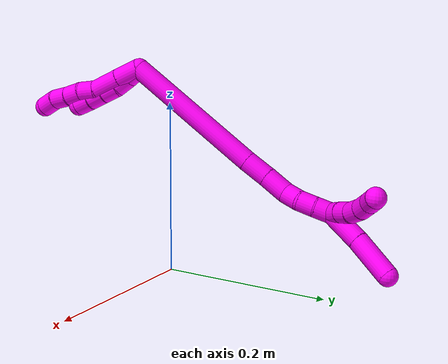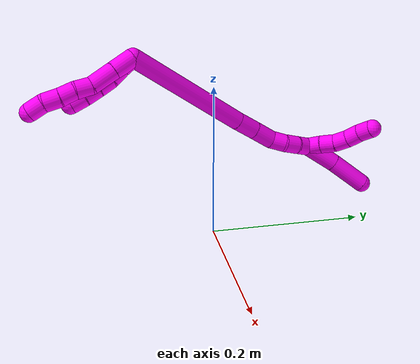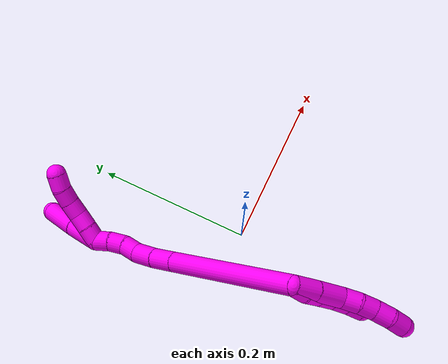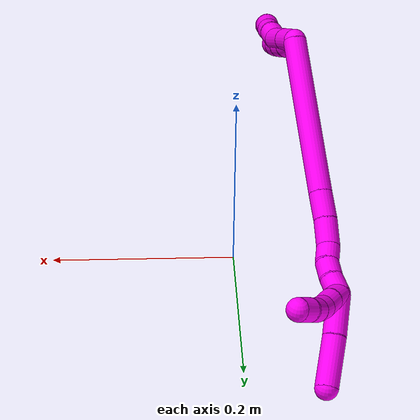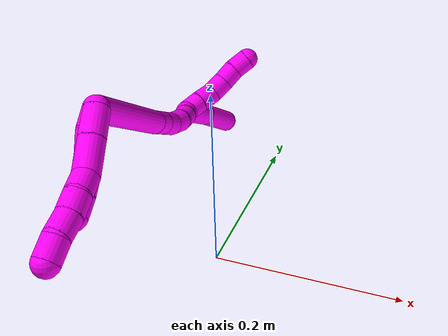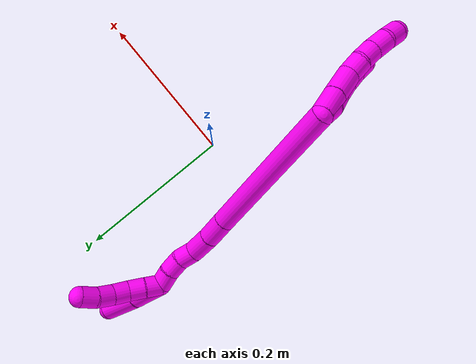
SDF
<sdf version="1.7">
 <world name="default">
  <model name="10">
   <static>0</static>
   <link name="10">
    <collision name="collision-cylinder-e_1_2_8">
     <pose>0.003015 -0.012654 -0.007743 2.11989 0.200472 0.355104</pose>
     <geometry><cylinder><radius>0.0125</radius><length>0.030277</length></cylinder></geometry>
     <surface>
      <friction><ode><mu>1.16</mu><mu2>1.16</mu2><slip1>0</slip1><slip2>0</slip2></ode></friction>
      <contact><ode><kp>1e+06</kp><kd>1</kd><max_vel>0</max_vel><min_depth>0.001</min_depth></ode></contact>
     </surface>
    </collision>
    <visual name="visual-cylinder-e_1_2_8">
     <pose>0.003015 -0.012654 -0.007743 2.11989 0.200472 0.355104</pose>
     <geometry><cylinder><radius>0.0125</radius><length>0.030277</length></cylinder></geometry>
     <material><ambient>1 0 0.964706 1</ambient></material>
    </visual>
    <collision name="collision-cylinder-e_2_8_9">
     <pose>0.009192 -0.039736 -0.024508 2.12965 0.183787 0.329615</pose>
     <geometry><cylinder><radius>0.0125</radius><length>0.034615</length></cylinder></geometry>
     <surface>
      <friction><ode><mu>1.16</mu><mu2>1.16</mu2><slip1>0</slip1><slip2>0</slip2></ode></friction>
      <contact><ode><kp>1e+06</kp><kd>1</kd><max_vel>0</max_vel><min_depth>0.001</min_depth></ode></contact>
     </surface>
    </collision>
    <visual name="visual-cylinder-e_2_8_9">
     <pose>0.009192 -0.039736 -0.024508 2.12965 0.183787 0.329615</pose>
     <geometry><cylinder><radius>0.0125</radius><length>0.034615</length></cylinder></geometry>
     <material><ambient>1 0 0.964706 1</ambient></material>
    </visual>
    <collision name="collision-cylinder-e_3_9_10">
     <pose>0.013704 -0.064436 -0.035727 1.78151 0.127658 0.157738</pose>
     <geometry><cylinder><radius>0.0125</radius><length>0.021183</length></cylinder></geometry>
     <surface>
      <friction><ode><mu>1.16</mu><mu2>1.16</mu2><slip1>0</slip1><slip2>0</slip2></ode></friction>
      <contact><ode><kp>1e+06</kp><kd>1</kd><max_vel>0</max_vel><min_depth>0.001</min_depth></ode></contact>
     </surface>
    </collision>
    <visual name="visual-cylinder-e_3_9_10">
     <pose>0.013704 -0.064436 -0.035727 1.78151 0.127658 0.157738</pose>
     <geometry><cylinder><radius>0.0125</radius><length>0.021183</length></cylinder></geometry>
     <material><ambient>1 0 0.964706 1</ambient></material>
    </visual>
    <collision name="collision-cylinder-e_4_10_11">
     <pose>0.015487 -0.084032 -0.041913 1.97509 0.042861 0.064945</pose>
     <geometry><cylinder><radius>0.0125</radius><length>0.020299</length></cylinder></geometry>
     <surface>
      <friction><ode><mu>1.16</mu><mu2>1.16</mu2><slip1>0</slip1><slip2>0</slip2></ode></friction>
      <contact><ode><kp>1e+06</kp><kd>1</kd><max_vel>0</max_vel><min_depth>0.001</min_depth></ode></contact>
     </surface>
    </collision>
    <visual name="visual-cylinder-e_4_10_11">
     <pose>0.015487 -0.084032 -0.041913 1.97509 0.042861 0.064945</pose>
     <geometry><cylinder><radius>0.0125</radius><length>0.020299</length></cylinder></geometry>
     <material><ambient>1 0 0.964706 1</ambient></material>
    </visual>
    <collision name="collision-cylinder-e_5_11_12">
     <pose>0.015533 -0.103765 -0.049341 1.88983 -0.03547 -0.049066</pose>
     <geometry><cylinder><radius>0.0125</radius><length>0.021942</length></cylinder></geometry>
     <surface>
      <friction><ode><mu>1.16</mu><mu2>1.16</mu2><slip1>0</slip1><slip2>0</slip2></ode></friction>
      <contact><ode><kp>1e+06</kp><kd>1</kd><max_vel>0</max_vel><min_depth>0.001</min_depth></ode></contact>
     </surface>
    </collision>
    <visual name="visual-cylinder-e_5_11_12">
     <pose>0.015533 -0.103765 -0.049341 1.88983 -0.03547 -0.049066</pose>
     <geometry><cylinder><radius>0.0125</radius><length>0.021942</length></cylinder></geometry>
     <material><ambient>1 0 0.964706 1</ambient></material>
    </visual>
    <collision name="collision-cylinder-e_6_12_6">
     <pose>0.014297 -0.123172 -0.058773 2.15852 -0.07815 -0.145791</pose>
     <geometry><cylinder><radius>0.0125</radius><length>0.021684</length></cylinder></geometry>
     <surface>
      <friction><ode><mu>1.16</mu><mu2>1.16</mu2><slip1>0</slip1><slip2>0</slip2></ode></friction>
      <contact><ode><kp>1e+06</kp><kd>1</kd><max_vel>0</max_vel><min_depth>0.001</min_depth></ode></contact>
     </surface>
    </collision>
    <visual name="visual-cylinder-e_6_12_6">
     <pose>0.014297 -0.123172 -0.058773 2.15852 -0.07815 -0.145791</pose>
     <geometry><cylinder><radius>0.0125</radius><length>0.021684</length></cylinder></geometry>
     <material><ambient>1 0 0.964706 1</ambient></material>
    </visual>
    <collision name="collision-cylinder-e_1_2_13">
     <pose>-0.000346 -0.007486 -0.006622 2.29503 -0.034655 -0.076893</pose>
     <geometry><cylinder><radius>0.0125</radius><length>0.02</length></cylinder></geometry>
     <surface>
      <friction><ode><mu>1.16</mu><mu2>1.16</mu2><slip1>0</slip1><slip2>0</slip2></ode></friction>
      <contact><ode><kp>1e+06</kp><kd>1</kd><max_vel>0</max_vel><min_depth>0.001</min_depth></ode></contact>
     </surface>
    </collision>
    <visual name="visual-cylinder-e_1_2_13">
     <pose>-0.000346 -0.007486 -0.006622 2.29503 -0.034655 -0.076893</pose>
     <geometry><cylinder><radius>0.0125</radius><length>0.02</length></cylinder></geometry>
     <material><ambient>1 0 0.964706 1</ambient></material>
    </visual>
    <collision name="collision-cylinder-e_2_13_14">
     <pose>0.001392 -0.022111 -0.019928 2.32327 0.210071 0.476977</pose>
     <geometry><cylinder><radius>0.0125</radius><length>0.02</length></cylinder></geometry>
     <surface>
      <friction><ode><mu>1.16</mu><mu2>1.16</mu2><slip1>0</slip1><slip2>0</slip2></ode></friction>
      <contact><ode><kp>1e+06</kp><kd>1</kd><max_vel>0</max_vel><min_depth>0.001</min_depth></ode></contact>
     </surface>
    </collision>
    <visual name="visual-cylinder-e_2_13_14">
     <pose>0.001392 -0.022111 -0.019928 2.32327 0.210071 0.476977</pose>
     <geometry><cylinder><radius>0.0125</radius><length>0.02</length></cylinder></geometry>
     <material><ambient>1 0 0.964706 1</ambient></material>
    </visual>
    <collision name="collision-cylinder-e_3_14_15">
     <pose>0.005463 -0.03757 -0.031792 2.1277 0.199833 0.357182</pose>
     <geometry><cylinder><radius>0.0125</radius><length>0.02</length></cylinder></geometry>
     <surface>
      <friction><ode><mu>1.16</mu><mu2>1.16</mu2><slip1>0</slip1><slip2>0</slip2></ode></friction>
      <contact><ode><kp>1e+06</kp><kd>1</kd><max_vel>0</max_vel><min_depth>0.001</min_depth></ode></contact>
     </surface>
    </collision>
    <visual name="visual-cylinder-e_3_14_15">
     <pose>0.005463 -0.03757 -0.031792 2.1277 0.199833 0.357182</pose>
     <geometry><cylinder><radius>0.0125</radius><length>0.02</length></cylinder></geometry>
     <material><ambient>1 0 0.964706 1</ambient></material>
    </visual>
    <collision name="collision-cylinder-e_4_15_16">
     <pose>0.008643 -0.054406 -0.042077 2.11076 0.119779 0.210908</pose>
     <geometry><cylinder><radius>0.0125</radius><length>0.02</length></cylinder></geometry>
     <surface>
      <friction><ode><mu>1.16</mu><mu2>1.16</mu2><slip1>0</slip1><slip2>0</slip2></ode></friction>
      <contact><ode><kp>1e+06</kp><kd>1</kd><max_vel>0</max_vel><min_depth>0.001</min_depth></ode></contact>
     </surface>
    </collision>
    <visual name="visual-cylinder-e_4_15_16">
     <pose>0.008643 -0.054406 -0.042077 2.11076 0.119779 0.210908</pose>
     <geometry><cylinder><radius>0.0125</radius><length>0.02</length></cylinder></geometry>
     <material><ambient>1 0 0.964706 1</ambient></material>
    </visual>
    <collision name="collision-cylinder-e_5_16_5">
     <pose>0.010249 -0.071738 -0.051884 2.06084 0.041159 0.068587</pose>
     <geometry><cylinder><radius>0.0125</radius><length>0.02</length></cylinder></geometry>
     <surface>
      <friction><ode><mu>1.16</mu><mu2>1.16</mu2><slip1>0</slip1><slip2>0</slip2></ode></friction>
      <contact><ode><kp>1e+06</kp><kd>1</kd><max_vel>0</max_vel><min_depth>0.001</min_depth></ode></contact>
     </surface>
    </collision>
    <visual name="visual-cylinder-e_5_16_5">
     <pose>0.010249 -0.071738 -0.051884 2.06084 0.041159 0.068587</pose>
     <geometry><cylinder><radius>0.0125</radius><length>0.02</length></cylinder></geometry>
     <material><ambient>1 0 0.964706 1</ambient></material>
    </visual>
    <collision name="collision-cylinder-e_1_2_17">
     <pose>-0.013038 0.073882 -0.047391 -2.14113 -0.147458 0.268636</pose>
     <geometry><cylinder><radius>0.0125</radius><length>0.177476</length></cylinder></geometry>
     <surface>
      <friction><ode><mu>1.16</mu><mu2>1.16</mu2><slip1>0</slip1><slip2>0</slip2></ode></friction>
      <contact><ode><kp>1e+06</kp><kd>1</kd><max_vel>0</max_vel><min_depth>0.001</min_depth></ode></contact>
     </surface>
    </collision>
    <visual name="visual-cylinder-e_1_2_17">
     <pose>-0.013038 0.073882 -0.047391 -2.14113 -0.147458 0.268636</pose>
     <geometry><cylinder><radius>0.0125</radius><length>0.177476</length></cylinder></geometry>
     <material><ambient>1 0 0.964706 1</ambient></material>
    </visual>
    <collision name="collision-cylinder-e_2_17_18">
     <pose>-0.028437 0.160861 -0.102448 -2.10034 -0.154368 0.268136</pose>
     <geometry><cylinder><radius>0.0125</radius><length>0.030718</length></cylinder></geometry>
     <surface>
      <friction><ode><mu>1.16</mu><mu2>1.16</mu2><slip1>0</slip1><slip2>0</slip2></ode></friction>
      <contact><ode><kp>1e+06</kp><kd>1</kd><max_vel>0</max_vel><min_depth>0.001</min_depth></ode></contact>
     </surface>
    </collision>
    <visual name="visual-cylinder-e_2_17_18">
     <pose>-0.028437 0.160861 -0.102448 -2.10034 -0.154368 0.268136</pose>
     <geometry><cylinder><radius>0.0125</radius><length>0.030718</length></cylinder></geometry>
     <material><ambient>1 0 0.964706 1</ambient></material>
    </visual>
    <collision name="collision-cylinder-e_3_18_19">
     <pose>-0.032011 0.186905 -0.117772 -2.10493 -0.080409 0.140826</pose>
     <geometry><cylinder><radius>0.0125</radius><length>0.030179</length></cylinder></geometry>
     <surface>
      <friction><ode><mu>1.16</mu><mu2>1.16</mu2><slip1>0</slip1><slip2>0</slip2></ode></friction>
      <contact><ode><kp>1e+06</kp><kd>1</kd><max_vel>0</max_vel><min_depth>0.001</min_depth></ode></contact>
     </surface>
    </collision>
    <visual name="visual-cylinder-e_3_18_19">
     <pose>-0.032011 0.186905 -0.117772 -2.10493 -0.080409 0.140826</pose>
     <geometry><cylinder><radius>0.0125</radius><length>0.030179</length></cylinder></geometry>
     <material><ambient>1 0 0.964706 1</ambient></material>
    </visual>
    <collision name="collision-cylinder-e_4_19_20">
     <pose>-0.031845 0.209614 -0.128108 -1.8386 0.135297 -0.177229</pose>
     <geometry><cylinder><radius>0.0125</radius><length>0.020434</length></cylinder></geometry>
     <surface>
      <friction><ode><mu>1.16</mu><mu2>1.16</mu2><slip1>0</slip1><slip2>0</slip2></ode></friction>
      <contact><ode><kp>1e+06</kp><kd>1</kd><max_vel>0</max_vel><min_depth>0.001</min_depth></ode></contact>
     </surface>
    </collision>
    <visual name="visual-cylinder-e_4_19_20">
     <pose>-0.031845 0.209614 -0.128108 -1.8386 0.135297 -0.177229</pose>
     <geometry><cylinder><radius>0.0125</radius><length>0.020434</length></cylinder></geometry>
     <material><ambient>1 0 0.964706 1</ambient></material>
    </visual>
    <collision name="collision-cylinder-e_5_20_21">
     <pose>-0.032006 0.22916 -0.133004 -1.79361 -0.152314 0.190477</pose>
     <geometry><cylinder><radius>0.0125</radius><length>0.020298</length></cylinder></geometry>
     <surface>
      <friction><ode><mu>1.16</mu><mu2>1.16</mu2><slip1>0</slip1><slip2>0</slip2></ode></friction>
      <contact><ode><kp>1e+06</kp><kd>1</kd><max_vel>0</max_vel><min_depth>0.001</min_depth></ode></contact>
     </surface>
    </collision>
    <visual name="visual-cylinder-e_5_20_21">
     <pose>-0.032006 0.22916 -0.133004 -1.79361 -0.152314 0.190477</pose>
     <geometry><cylinder><radius>0.0125</radius><length>0.020298</length></cylinder></geometry>
     <material><ambient>1 0 0.964706 1</ambient></material>
    </visual>
    <collision name="collision-cylinder-e_6_21_1">
     <pose>-0.036751 0.248544 -0.137811 -1.83435 -0.311774 0.404763</pose>
     <geometry><cylinder><radius>0.0125</radius><length>0.020895</length></cylinder></geometry>
     <surface>
      <friction><ode><mu>1.16</mu><mu2>1.16</mu2><slip1>0</slip1><slip2>0</slip2></ode></friction>
      <contact><ode><kp>1e+06</kp><kd>1</kd><max_vel>0</max_vel><min_depth>0.001</min_depth></ode></contact>
     </surface>
    </collision>
    <visual name="visual-cylinder-e_6_21_1">
     <pose>-0.036751 0.248544 -0.137811 -1.83435 -0.311774 0.404763</pose>
     <geometry><cylinder><radius>0.0125</radius><length>0.020895</length></cylinder></geometry>
     <material><ambient>1 0 0.964706 1</ambient></material>
    </visual>
    <collision name="collision-cylinder-e_1_1_22">
     <pose>-0.034739 0.266157 -0.137471 -1.22014 0.548791 -0.388582</pose>
     <geometry><cylinder><radius>0.0125</radius><length>0.02</length></cylinder></geometry>
     <surface>
      <friction><ode><mu>1.16</mu><mu2>1.16</mu2><slip1>0</slip1><slip2>0</slip2></ode></friction>
      <contact><ode><kp>1e+06</kp><kd>1</kd><max_vel>0</max_vel><min_depth>0.001</min_depth></ode></contact>
     </surface>
    </collision>
    <visual name="visual-cylinder-e_1_1_22">
     <pose>-0.034739 0.266157 -0.137471 -1.22014 0.548791 -0.388582</pose>
     <geometry><cylinder><radius>0.0125</radius><length>0.02</length></cylinder></geometry>
     <material><ambient>1 0 0.964706 1</ambient></material>
    </visual>
    <collision name="collision-cylinder-e_2_22_23">
     <pose>-0.024479 0.282532 -0.132389 -1.31909 0.528684 -0.413748</pose>
     <geometry><cylinder><radius>0.0125</radius><length>0.02</length></cylinder></geometry>
     <surface>
      <friction><ode><mu>1.16</mu><mu2>1.16</mu2><slip1>0</slip1><slip2>0</slip2></ode></friction>
      <contact><ode><kp>1e+06</kp><kd>1</kd><max_vel>0</max_vel><min_depth>0.001</min_depth></ode></contact>
     </surface>
    </collision>
    <visual name="visual-cylinder-e_2_22_23">
     <pose>-0.024479 0.282532 -0.132389 -1.31909 0.528684 -0.413748</pose>
     <geometry><cylinder><radius>0.0125</radius><length>0.02</length></cylinder></geometry>
     <material><ambient>1 0 0.964706 1</ambient></material>
    </visual>
    <collision name="collision-cylinder-e_3_23_24">
     <pose>-0.014734 0.298618 -0.125967 -1.06553 0.489404 -0.292372</pose>
     <geometry><cylinder><radius>0.0125</radius><length>0.02</length></cylinder></geometry>
     <surface>
      <friction><ode><mu>1.16</mu><mu2>1.16</mu2><slip1>0</slip1><slip2>0</slip2></ode></friction>
      <contact><ode><kp>1e+06</kp><kd>1</kd><max_vel>0</max_vel><min_depth>0.001</min_depth></ode></contact>
     </surface>
    </collision>
    <visual name="visual-cylinder-e_3_23_24">
     <pose>-0.014734 0.298618 -0.125967 -1.06553 0.489404 -0.292372</pose>
     <geometry><cylinder><radius>0.0125</radius><length>0.02</length></cylinder></geometry>
     <material><ambient>1 0 0.964706 1</ambient></material>
    </visual>
    <collision name="collision-cylinder-e_4_24_25">
     <pose>-0.005001 0.312981 -0.116164 -0.876257 0.527305 -0.251593</pose>
     <geometry><cylinder><radius>0.0125</radius><length>0.02</length></cylinder></geometry>
     <surface>
      <friction><ode><mu>1.16</mu><mu2>1.16</mu2><slip1>0</slip1><slip2>0</slip2></ode></friction>
      <contact><ode><kp>1e+06</kp><kd>1</kd><max_vel>0</max_vel><min_depth>0.001</min_depth></ode></contact>
     </surface>
    </collision>
    <visual name="visual-cylinder-e_4_24_25">
     <pose>-0.005001 0.312981 -0.116164 -0.876257 0.527305 -0.251593</pose>
     <geometry><cylinder><radius>0.0125</radius><length>0.02</length></cylinder></geometry>
     <material><ambient>1 0 0.964706 1</ambient></material>
    </visual>
    <collision name="collision-cylinder-e_5_25_4">
     <pose>0.006792 0.325321 -0.105963 -0.884509 0.742347 -0.364524</pose>
     <geometry><cylinder><radius>0.0125</radius><length>0.02</length></cylinder></geometry>
     <surface>
      <friction><ode><mu>1.16</mu><mu2>1.16</mu2><slip1>0</slip1><slip2>0</slip2></ode></friction>
      <contact><ode><kp>1e+06</kp><kd>1</kd><max_vel>0</max_vel><min_depth>0.001</min_depth></ode></contact>
     </surface>
    </collision>
    <visual name="visual-cylinder-e_5_25_4">
     <pose>0.006792 0.325321 -0.105963 -0.884509 0.742347 -0.364524</pose>
     <geometry><cylinder><radius>0.0125</radius><length>0.02</length></cylinder></geometry>
     <material><ambient>1 0 0.964706 1</ambient></material>
    </visual>
    <collision name="collision-cylinder-e_1_1_26">
     <pose>-0.037321 0.277456 -0.152394 -2.12651 0.115395 -0.206984</pose>
     <geometry><cylinder><radius>0.0125</radius><length>0.045768</length></cylinder></geometry>
     <surface>
      <friction><ode><mu>1.16</mu><mu2>1.16</mu2><slip1>0</slip1><slip2>0</slip2></ode></friction>
      <contact><ode><kp>1e+06</kp><kd>1</kd><max_vel>0</max_vel><min_depth>0.001</min_depth></ode></contact>
     </surface>
    </collision>
    <visual name="visual-cylinder-e_1_1_26">
     <pose>-0.037321 0.277456 -0.152394 -2.12651 0.115395 -0.206984</pose>
     <geometry><cylinder><radius>0.0125</radius><length>0.045768</length></cylinder></geometry>
     <material><ambient>1 0 0.964706 1</ambient></material>
    </visual>
    <collision name="collision-cylinder-e_2_26_3">
     <pose>-0.030526 0.318568 -0.179964 -2.19121 0.15403 -0.297744</pose>
     <geometry><cylinder><radius>0.0125</radius><length>0.054232</length></cylinder></geometry>
     <surface>
      <friction><ode><mu>1.16</mu><mu2>1.16</mu2><slip1>0</slip1><slip2>0</slip2></ode></friction>
      <contact><ode><kp>1e+06</kp><kd>1</kd><max_vel>0</max_vel><min_depth>0.001</min_depth></ode></contact>
     </surface>
    </collision>
    <visual name="visual-cylinder-e_2_26_3">
     <pose>-0.030526 0.318568 -0.179964 -2.19121 0.15403 -0.297744</pose>
     <geometry><cylinder><radius>0.0125</radius><length>0.054232</length></cylinder></geometry>
     <material><ambient>1 0 0.964706 1</ambient></material>
    </visual>
    <collision name="collision-sphere-3">
     <pose>-0.026366 0.340369 -0.195541 0 -0 0</pose>
     <geometry><sphere><radius>0.0125</radius></sphere></geometry>
     <surface>
      <friction><ode><mu>1.16</mu><mu2>1.16</mu2><slip1>0</slip1><slip2>0</slip2></ode></friction>
      <contact><ode><kp>1e+06</kp><kd>1</kd><max_vel>0</max_vel><min_depth>0.001</min_depth></ode></contact>
     </surface>
    </collision>
    <visual name="visual-sphere-3">
     <pose>-0.026366 0.340369 -0.195541 0 -0 0</pose>
     <geometry><sphere><radius>0.0125</radius></sphere></geometry>
     <material><ambient>1 0 0.964706 1</ambient></material>
    </visual>
    <collision name="collision-sphere-26">
     <pose>-0.034686 0.296767 -0.164386 0 -0 0</pose>
     <geometry><sphere><radius>0.0125</radius></sphere></geometry>
     <surface>
      <friction><ode><mu>1.16</mu><mu2>1.16</mu2><slip1>0</slip1><slip2>0</slip2></ode></friction>
      <contact><ode><kp>1e+06</kp><kd>1</kd><max_vel>0</max_vel><min_depth>0.001</min_depth></ode></contact>
     </surface>
    </collision>
    <visual name="visual-sphere-26">
     <pose>-0.034686 0.296767 -0.164386 0 -0 0</pose>
     <geometry><sphere><radius>0.0125</radius></sphere></geometry>
     <material><ambient>1 0 0.964706 1</ambient></material>
    </visual>
    <collision name="collision-sphere-4">
     <pose>0.013552 0.331022 -0.101294 0 -0 0</pose>
     <geometry><sphere><radius>0.0125</radius></sphere></geometry>
     <surface>
      <friction><ode><mu>1.16</mu><mu2>1.16</mu2><slip1>0</slip1><slip2>0</slip2></ode></friction>
      <contact><ode><kp>1e+06</kp><kd>1</kd><max_vel>0</max_vel><min_depth>0.001</min_depth></ode></contact>
     </surface>
    </collision>
    <visual name="visual-sphere-4">
     <pose>0.013552 0.331022 -0.101294 0 -0 0</pose>
     <geometry><sphere><radius>0.0125</radius></sphere></geometry>
     <material><ambient>1 0 0.964706 1</ambient></material>
    </visual>
    <collision name="collision-sphere-25">
     <pose>3.2e-05 0.31962 -0.110633 0 -0 0</pose>
     <geometry><sphere><radius>0.0125</radius></sphere></geometry>
     <surface>
      <friction><ode><mu>1.16</mu><mu2>1.16</mu2><slip1>0</slip1><slip2>0</slip2></ode></friction>
      <contact><ode><kp>1e+06</kp><kd>1</kd><max_vel>0</max_vel><min_depth>0.001</min_depth></ode></contact>
     </surface>
    </collision>
    <visual name="visual-sphere-25">
     <pose>3.2e-05 0.31962 -0.110633 0 -0 0</pose>
     <geometry><sphere><radius>0.0125</radius></sphere></geometry>
     <material><ambient>1 0 0.964706 1</ambient></material>
    </visual>
    <collision name="collision-sphere-24">
     <pose>-0.010033 0.306341 -0.121695 0 -0 0</pose>
     <geometry><sphere><radius>0.0125</radius></sphere></geometry>
     <surface>
      <friction><ode><mu>1.16</mu><mu2>1.16</mu2><slip1>0</slip1><slip2>0</slip2></ode></friction>
      <contact><ode><kp>1e+06</kp><kd>1</kd><max_vel>0</max_vel><min_depth>0.001</min_depth></ode></contact>
     </surface>
    </collision>
    <visual name="visual-sphere-24">
     <pose>-0.010033 0.306341 -0.121695 0 -0 0</pose>
     <geometry><sphere><radius>0.0125</radius></sphere></geometry>
     <material><ambient>1 0 0.964706 1</ambient></material>
    </visual>
    <collision name="collision-sphere-23">
     <pose>-0.019435 0.290894 -0.130239 0 -0 0</pose>
     <geometry><sphere><radius>0.0125</radius></sphere></geometry>
     <surface>
      <friction><ode><mu>1.16</mu><mu2>1.16</mu2><slip1>0</slip1><slip2>0</slip2></ode></friction>
      <contact><ode><kp>1e+06</kp><kd>1</kd><max_vel>0</max_vel><min_depth>0.001</min_depth></ode></contact>
     </surface>
    </collision>
    <visual name="visual-sphere-23">
     <pose>-0.019435 0.290894 -0.130239 0 -0 0</pose>
     <geometry><sphere><radius>0.0125</radius></sphere></geometry>
     <material><ambient>1 0 0.964706 1</ambient></material>
    </visual>
    <collision name="collision-sphere-22">
     <pose>-0.029523 0.274169 -0.13454 0 -0 0</pose>
     <geometry><sphere><radius>0.0125</radius></sphere></geometry>
     <surface>
      <friction><ode><mu>1.16</mu><mu2>1.16</mu2><slip1>0</slip1><slip2>0</slip2></ode></friction>
      <contact><ode><kp>1e+06</kp><kd>1</kd><max_vel>0</max_vel><min_depth>0.001</min_depth></ode></contact>
     </surface>
    </collision>
    <visual name="visual-sphere-22">
     <pose>-0.029523 0.274169 -0.13454 0 -0 0</pose>
     <geometry><sphere><radius>0.0125</radius></sphere></geometry>
     <material><ambient>1 0 0.964706 1</ambient></material>
    </visual>
    <collision name="collision-sphere-1">
     <pose>-0.039956 0.258144 -0.140401 0 -0 0</pose>
     <geometry><sphere><radius>0.0125</radius></sphere></geometry>
     <surface>
      <friction><ode><mu>1.16</mu><mu2>1.16</mu2><slip1>0</slip1><slip2>0</slip2></ode></friction>
      <contact><ode><kp>1e+06</kp><kd>1</kd><max_vel>0</max_vel><min_depth>0.001</min_depth></ode></contact>
     </surface>
    </collision>
    <visual name="visual-sphere-1">
     <pose>-0.039956 0.258144 -0.140401 0 -0 0</pose>
     <geometry><sphere><radius>0.0125</radius></sphere></geometry>
     <material><ambient>1 0 0.964706 1</ambient></material>
    </visual>
    <collision name="collision-sphere-21">
     <pose>-0.033546 0.238943 -0.13522 0 -0 0</pose>
     <geometry><sphere><radius>0.0125</radius></sphere></geometry>
     <surface>
      <friction><ode><mu>1.16</mu><mu2>1.16</mu2><slip1>0</slip1><slip2>0</slip2></ode></friction>
      <contact><ode><kp>1e+06</kp><kd>1</kd><max_vel>0</max_vel><min_depth>0.001</min_depth></ode></contact>
     </surface>
    </collision>
    <visual name="visual-sphere-21">
     <pose>-0.033546 0.238943 -0.13522 0 -0 0</pose>
     <geometry><sphere><radius>0.0125</radius></sphere></geometry>
     <material><ambient>1 0 0.964706 1</ambient></material>
    </visual>
    <collision name="collision-sphere-12">
     <pose>0.015144 -0.114176 -0.05278 0 -0 0</pose>
     <geometry><sphere><radius>0.0125</radius></sphere></geometry>
     <surface>
      <friction><ode><mu>1.16</mu><mu2>1.16</mu2><slip1>0</slip1><slip2>0</slip2></ode></friction>
      <contact><ode><kp>1e+06</kp><kd>1</kd><max_vel>0</max_vel><min_depth>0.001</min_depth></ode></contact>
     </surface>
    </collision>
    <visual name="visual-sphere-12">
     <pose>0.015144 -0.114176 -0.05278 0 -0 0</pose>
     <geometry><sphere><radius>0.0125</radius></sphere></geometry>
     <material><ambient>1 0 0.964706 1</ambient></material>
    </visual>
    <collision name="collision-sphere-11">
     <pose>0.015922 -0.093354 -0.045902 0 -0 0</pose>
     <geometry><sphere><radius>0.0125</radius></sphere></geometry>
     <surface>
      <friction><ode><mu>1.16</mu><mu2>1.16</mu2><slip1>0</slip1><slip2>0</slip2></ode></friction>
      <contact><ode><kp>1e+06</kp><kd>1</kd><max_vel>0</max_vel><min_depth>0.001</min_depth></ode></contact>
     </surface>
    </collision>
    <visual name="visual-sphere-11">
     <pose>0.015922 -0.093354 -0.045902 0 -0 0</pose>
     <geometry><sphere><radius>0.0125</radius></sphere></geometry>
     <material><ambient>1 0 0.964706 1</ambient></material>
    </visual>
    <collision name="collision-sphere-10">
     <pose>0.015052 -0.074709 -0.037924 0 -0 0</pose>
     <geometry><sphere><radius>0.0125</radius></sphere></geometry>
     <surface>
      <friction><ode><mu>1.16</mu><mu2>1.16</mu2><slip1>0</slip1><slip2>0</slip2></ode></friction>
      <contact><ode><kp>1e+06</kp><kd>1</kd><max_vel>0</max_vel><min_depth>0.001</min_depth></ode></contact>
     </surface>
    </collision>
    <visual name="visual-sphere-10">
     <pose>0.015052 -0.074709 -0.037924 0 -0 0</pose>
     <geometry><sphere><radius>0.0125</radius></sphere></geometry>
     <material><ambient>1 0 0.964706 1</ambient></material>
    </visual>
    <collision name="collision-sphere-9">
     <pose>0.012355 -0.054163 -0.03353 0 -0 0</pose>
     <geometry><sphere><radius>0.0125</radius></sphere></geometry>
     <surface>
      <friction><ode><mu>1.16</mu><mu2>1.16</mu2><slip1>0</slip1><slip2>0</slip2></ode></friction>
      <contact><ode><kp>1e+06</kp><kd>1</kd><max_vel>0</max_vel><min_depth>0.001</min_depth></ode></contact>
     </surface>
    </collision>
    <visual name="visual-sphere-9">
     <pose>0.012355 -0.054163 -0.03353 0 -0 0</pose>
     <geometry><sphere><radius>0.0125</radius></sphere></geometry>
     <material><ambient>1 0 0.964706 1</ambient></material>
    </visual>
    <collision name="collision-sphere-2">
     <geometry><sphere><radius>0.0125</radius></sphere></geometry>
     <surface>
      <friction><ode><mu>1.16</mu><mu2>1.16</mu2><slip1>0</slip1><slip2>0</slip2></ode></friction>
      <contact><ode><kp>1e+06</kp><kd>1</kd><max_vel>0</max_vel><min_depth>0.001</min_depth></ode></contact>
     </surface>
    </collision>
    <visual name="visual-sphere-2">
     <geometry><sphere><radius>0.0125</radius></sphere></geometry>
     <material><ambient>1 0 0.964706 1</ambient></material>
    </visual>
    <collision name="collision-sphere-19">
     <pose>-0.033223 0.199851 -0.125429 0 -0 0</pose>
     <geometry><sphere><radius>0.0125</radius></sphere></geometry>
     <surface>
      <friction><ode><mu>1.16</mu><mu2>1.16</mu2><slip1>0</slip1><slip2>0</slip2></ode></friction>
      <contact><ode><kp>1e+06</kp><kd>1</kd><max_vel>0</max_vel><min_depth>0.001</min_depth></ode></contact>
     </surface>
    </collision>
    <visual name="visual-sphere-19">
     <pose>-0.033223 0.199851 -0.125429 0 -0 0</pose>
     <geometry><sphere><radius>0.0125</radius></sphere></geometry>
     <material><ambient>1 0 0.964706 1</ambient></material>
    </visual>
    <collision name="collision-sphere-8">
     <pose>0.006029 -0.025309 -0.015486 0 -0 0</pose>
     <geometry><sphere><radius>0.0125</radius></sphere></geometry>
     <surface>
      <friction><ode><mu>1.16</mu><mu2>1.16</mu2><slip1>0</slip1><slip2>0</slip2></ode></friction>
      <contact><ode><kp>1e+06</kp><kd>1</kd><max_vel>0</max_vel><min_depth>0.001</min_depth></ode></contact>
     </surface>
    </collision>
    <visual name="visual-sphere-8">
     <pose>0.006029 -0.025309 -0.015486 0 -0 0</pose>
     <geometry><sphere><radius>0.0125</radius></sphere></geometry>
     <material><ambient>1 0 0.964706 1</ambient></material>
    </visual>
    <collision name="collision-sphere-6">
     <pose>0.013451 -0.132167 -0.064766 0 -0 0</pose>
     <geometry><sphere><radius>0.0125</radius></sphere></geometry>
     <surface>
      <friction><ode><mu>1.16</mu><mu2>1.16</mu2><slip1>0</slip1><slip2>0</slip2></ode></friction>
      <contact><ode><kp>1e+06</kp><kd>1</kd><max_vel>0</max_vel><min_depth>0.001</min_depth></ode></contact>
     </surface>
    </collision>
    <visual name="visual-sphere-6">
     <pose>0.013451 -0.132167 -0.064766 0 -0 0</pose>
     <geometry><sphere><radius>0.0125</radius></sphere></geometry>
     <material><ambient>1 0 0.964706 1</ambient></material>
    </visual>
    <collision name="collision-sphere-13">
     <pose>-0.000693 -0.014971 -0.013243 0 -0 0</pose>
     <geometry><sphere><radius>0.0125</radius></sphere></geometry>
     <surface>
      <friction><ode><mu>1.16</mu><mu2>1.16</mu2><slip1>0</slip1><slip2>0</slip2></ode></friction>
      <contact><ode><kp>1e+06</kp><kd>1</kd><max_vel>0</max_vel><min_depth>0.001</min_depth></ode></contact>
     </surface>
    </collision>
    <visual name="visual-sphere-13">
     <pose>-0.000693 -0.014971 -0.013243 0 -0 0</pose>
     <geometry><sphere><radius>0.0125</radius></sphere></geometry>
     <material><ambient>1 0 0.964706 1</ambient></material>
    </visual>
    <collision name="collision-sphere-14">
     <pose>0.003478 -0.02925 -0.026612 0 -0 0</pose>
     <geometry><sphere><radius>0.0125</radius></sphere></geometry>
     <surface>
      <friction><ode><mu>1.16</mu><mu2>1.16</mu2><slip1>0</slip1><slip2>0</slip2></ode></friction>
      <contact><ode><kp>1e+06</kp><kd>1</kd><max_vel>0</max_vel><min_depth>0.001</min_depth></ode></contact>
     </surface>
    </collision>
    <visual name="visual-sphere-14">
     <pose>0.003478 -0.02925 -0.026612 0 -0 0</pose>
     <geometry><sphere><radius>0.0125</radius></sphere></geometry>
     <material><ambient>1 0 0.964706 1</ambient></material>
    </visual>
    <collision name="collision-sphere-15">
     <pose>0.007448 -0.04589 -0.036973 0 -0 0</pose>
     <geometry><sphere><radius>0.0125</radius></sphere></geometry>
     <surface>
      <friction><ode><mu>1.16</mu><mu2>1.16</mu2><slip1>0</slip1><slip2>0</slip2></ode></friction>
      <contact><ode><kp>1e+06</kp><kd>1</kd><max_vel>0</max_vel><min_depth>0.001</min_depth></ode></contact>
     </surface>
    </collision>
    <visual name="visual-sphere-15">
     <pose>0.007448 -0.04589 -0.036973 0 -0 0</pose>
     <geometry><sphere><radius>0.0125</radius></sphere></geometry>
     <material><ambient>1 0 0.964706 1</ambient></material>
    </visual>
    <collision name="collision-sphere-16">
     <pose>0.009838 -0.062922 -0.047181 0 -0 0</pose>
     <geometry><sphere><radius>0.0125</radius></sphere></geometry>
     <surface>
      <friction><ode><mu>1.16</mu><mu2>1.16</mu2><slip1>0</slip1><slip2>0</slip2></ode></friction>
      <contact><ode><kp>1e+06</kp><kd>1</kd><max_vel>0</max_vel><min_depth>0.001</min_depth></ode></contact>
     </surface>
    </collision>
    <visual name="visual-sphere-16">
     <pose>0.009838 -0.062922 -0.047181 0 -0 0</pose>
     <geometry><sphere><radius>0.0125</radius></sphere></geometry>
     <material><ambient>1 0 0.964706 1</ambient></material>
    </visual>
    <collision name="collision-sphere-5">
     <pose>0.010661 -0.080553 -0.056586 0 -0 0</pose>
     <geometry><sphere><radius>0.0125</radius></sphere></geometry>
     <surface>
      <friction><ode><mu>1.16</mu><mu2>1.16</mu2><slip1>0</slip1><slip2>0</slip2></ode></friction>
      <contact><ode><kp>1e+06</kp><kd>1</kd><max_vel>0</max_vel><min_depth>0.001</min_depth></ode></contact>
     </surface>
    </collision>
    <visual name="visual-sphere-5">
     <pose>0.010661 -0.080553 -0.056586 0 -0 0</pose>
     <geometry><sphere><radius>0.0125</radius></sphere></geometry>
     <material><ambient>1 0 0.964706 1</ambient></material>
    </visual>
    <collision name="collision-sphere-17">
     <pose>-0.026075 0.147763 -0.094782 0 -0 0</pose>
     <geometry><sphere><radius>0.0125</radius></sphere></geometry>
     <surface>
      <friction><ode><mu>1.16</mu><mu2>1.16</mu2><slip1>0</slip1><slip2>0</slip2></ode></friction>
      <contact><ode><kp>1e+06</kp><kd>1</kd><max_vel>0</max_vel><min_depth>0.001</min_depth></ode></contact>
     </surface>
    </collision>
    <visual name="visual-sphere-17">
     <pose>-0.026075 0.147763 -0.094782 0 -0 0</pose>
     <geometry><sphere><radius>0.0125</radius></sphere></geometry>
     <material><ambient>1 0 0.964706 1</ambient></material>
    </visual>
    <collision name="collision-sphere-18">
     <pose>-0.030799 0.173959 -0.110115 0 -0 0</pose>
     <geometry><sphere><radius>0.0125</radius></sphere></geometry>
     <surface>
      <friction><ode><mu>1.16</mu><mu2>1.16</mu2><slip1>0</slip1><slip2>0</slip2></ode></friction>
      <contact><ode><kp>1e+06</kp><kd>1</kd><max_vel>0</max_vel><min_depth>0.001</min_depth></ode></contact>
     </surface>
    </collision>
    <visual name="visual-sphere-18">
     <pose>-0.030799 0.173959 -0.110115 0 -0 0</pose>
     <geometry><sphere><radius>0.0125</radius></sphere></geometry>
     <material><ambient>1 0 0.964706 1</ambient></material>
    </visual>
    <collision name="collision-sphere-20">
     <pose>-0.030466 0.219377 -0.130787 0 -0 0</pose>
     <geometry><sphere><radius>0.0125</radius></sphere></geometry>
     <surface>
      <friction><ode><mu>1.16</mu><mu2>1.16</mu2><slip1>0</slip1><slip2>0</slip2></ode></friction>
      <contact><ode><kp>1e+06</kp><kd>1</kd><max_vel>0</max_vel><min_depth>0.001</min_depth></ode></contact>
     </surface>
    </collision>
    <visual name="visual-sphere-20">
     <pose>-0.030466 0.219377 -0.130787 0 -0 0</pose>
     <geometry><sphere><radius>0.0125</radius></sphere></geometry>
     <material><ambient>1 0 0.964706 1</ambient></material>
    </visual>
    <inertial>
     <pose>-0.011807 0.111822 -0.080662 0 -0 0</pose>
     <mass>0.75</mass>
     <inertia>
      <ixx>0.000639</ixx>
      <ixy>0</ixy>
      <ixz>0</ixz>
      <iyy>-0.000116</iyy>
      <iyz>0</iyz>
      <izz>-0.000372</izz>
     </inertia>
    </inertial>
   </link>
   <pose>-0.068256 -0.090608 0.224226 -0.046788 -0.08665 0.014055</pose>
  </model>
 </world>
</sdf>
